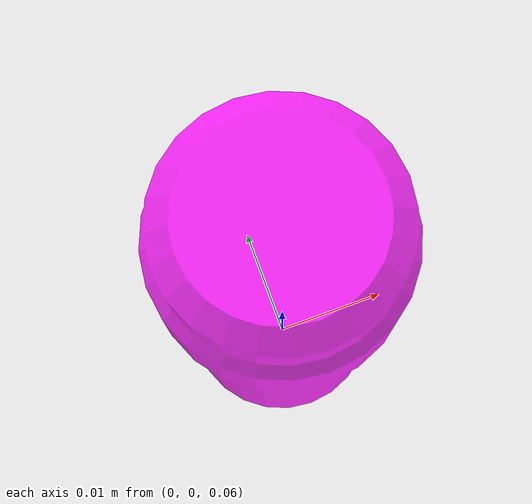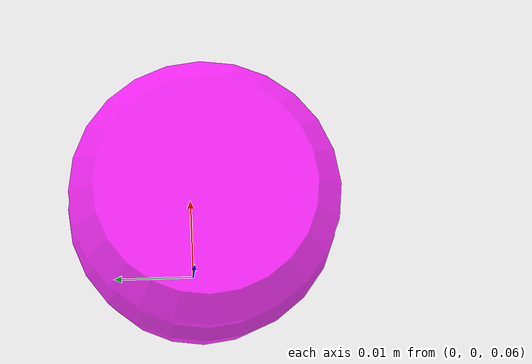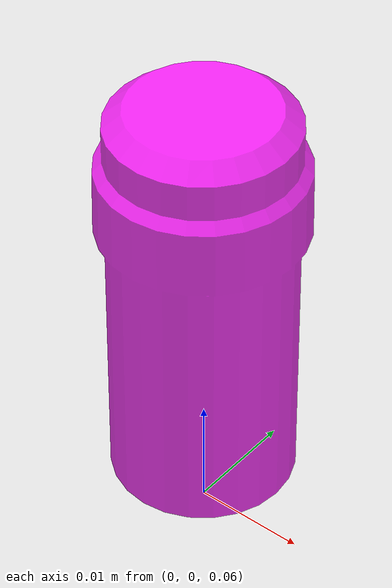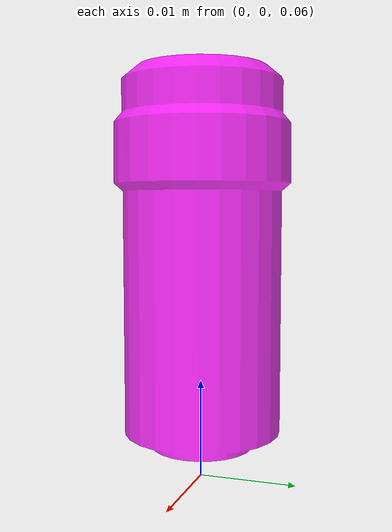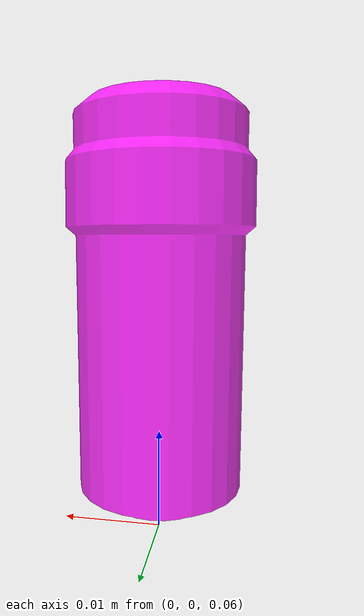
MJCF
<mujoco model="bottom_watertight_tiny">
  <default>
    <default group="2" type="mesh" contype="0" conaffinity="0">
      <geom group="2" type="mesh" contype="0" conaffinity="0"/>
    </default>
    <default group="3" type="mesh">
      <geom group="3" type="mesh"/>
    </default>
  </default>
  <asset>
    <mesh file="bottom_watertight_tiny.obj"/>
    <mesh file="bottom_watertight_tiny_collision_0.obj"/>
    <mesh file="bottom_watertight_tiny_collision_1.obj"/>
    <mesh file="bottom_watertight_tiny_collision_2.obj"/>
    <mesh file="bottom_watertight_tiny_collision_3.obj"/>
    <mesh file="bottom_watertight_tiny_collision_4.obj"/>
    <mesh file="bottom_watertight_tiny_collision_5.obj"/>
    <mesh file="bottom_watertight_tiny_collision_6.obj"/>
    <mesh file="bottom_watertight_tiny_collision_7.obj"/>
    <mesh file="bottom_watertight_tiny_collision_8.obj"/>
    <mesh file="bottom_watertight_tiny_collision_9.obj"/>
    <mesh file="bottom_watertight_tiny_collision_10.obj"/>
    <mesh file="bottom_watertight_tiny_collision_11.obj"/>
    <mesh file="bottom_watertight_tiny_collision_12.obj"/>
    <mesh file="bottom_watertight_tiny_collision_13.obj"/>
    <mesh file="bottom_watertight_tiny_collision_14.obj"/>
    <mesh file="bottom_watertight_tiny_collision_15.obj"/>
    <mesh file="bottom_watertight_tiny_collision_16.obj"/>
    <mesh file="bottom_watertight_tiny_collision_17.obj"/>
    <mesh file="bottom_watertight_tiny_collision_18.obj"/>
    <mesh file="bottom_watertight_tiny_collision_19.obj"/>
    <mesh file="bottom_watertight_tiny_collision_20.obj"/>
    <mesh file="bottom_watertight_tiny_collision_21.obj"/>
    <mesh file="bottom_watertight_tiny_collision_22.obj"/>
    <mesh file="bottom_watertight_tiny_collision_23.obj"/>
    <mesh file="bottom_watertight_tiny_collision_24.obj"/>
    <mesh file="bottom_watertight_tiny_collision_25.obj"/>
    <mesh file="bottom_watertight_tiny_collision_26.obj"/>
    <mesh file="bottom_watertight_tiny_collision_27.obj"/>
    <mesh file="bottom_watertight_tiny_collision_28.obj"/>
    <mesh file="bottom_watertight_tiny_collision_29.obj"/>
    <mesh file="bottom_watertight_tiny_collision_30.obj"/>
    <mesh file="bottom_watertight_tiny_collision_31.obj"/>
    <mesh file="bottom_watertight_tiny_collision_32.obj"/>
    <mesh file="bottom_watertight_tiny_collision_33.obj"/>
    <mesh file="bottom_watertight_tiny_collision_34.obj"/>
    <mesh file="bottom_watertight_tiny_collision_35.obj"/>
    <mesh file="bottom_watertight_tiny_collision_36.obj"/>
    <mesh file="bottom_watertight_tiny_collision_37.obj"/>
    <mesh file="bottom_watertight_tiny_collision_38.obj"/>
    <mesh file="bottom_watertight_tiny_collision_39.obj"/>
    <mesh file="bottom_watertight_tiny_collision_40.obj"/>
    <mesh file="bottom_watertight_tiny_collision_41.obj"/>
    <mesh file="bottom_watertight_tiny_collision_42.obj"/>
    <mesh file="bottom_watertight_tiny_collision_43.obj"/>
    <mesh file="bottom_watertight_tiny_collision_44.obj"/>
    <mesh file="bottom_watertight_tiny_collision_45.obj"/>
    <mesh file="bottom_watertight_tiny_collision_46.obj"/>
    <mesh file="bottom_watertight_tiny_collision_47.obj"/>
    <mesh file="bottom_watertight_tiny_collision_48.obj"/>
    <mesh file="bottom_watertight_tiny_collision_49.obj"/>
    <mesh file="bottom_watertight_tiny_collision_50.obj"/>
    <mesh file="bottom_watertight_tiny_collision_51.obj"/>
    <mesh file="bottom_watertight_tiny_collision_52.obj"/>
    <mesh file="bottom_watertight_tiny_collision_53.obj"/>
    <mesh file="bottom_watertight_tiny_collision_54.obj"/>
    <mesh file="bottom_watertight_tiny_collision_55.obj"/>
    <mesh file="bottom_watertight_tiny_collision_56.obj"/>
    <mesh file="bottom_watertight_tiny_collision_57.obj"/>
    <mesh file="bottom_watertight_tiny_collision_58.obj"/>
    <mesh file="bottom_watertight_tiny_collision_59.obj"/>
    <mesh file="bottom_watertight_tiny_collision_60.obj"/>
    <mesh file="bottom_watertight_tiny_collision_61.obj"/>
    <mesh file="bottom_watertight_tiny_collision_62.obj"/>
    <mesh file="bottom_watertight_tiny_collision_63.obj"/>
    <mesh file="bottom_watertight_tiny_collision_64.obj"/>
    <mesh file="bottom_watertight_tiny_collision_65.obj"/>
    <mesh file="bottom_watertight_tiny_collision_66.obj"/>
    <mesh file="bottom_watertight_tiny_collision_67.obj"/>
    <mesh file="bottom_watertight_tiny_collision_68.obj"/>
    <mesh file="bottom_watertight_tiny_collision_69.obj"/>
    <mesh file="bottom_watertight_tiny_collision_70.obj"/>
    <mesh file="bottom_watertight_tiny_collision_71.obj"/>
    <mesh file="bottom_watertight_tiny_collision_72.obj"/>
    <mesh file="bottom_watertight_tiny_collision_73.obj"/>
    <mesh file="bottom_watertight_tiny_collision_74.obj"/>
    <mesh file="bottom_watertight_tiny_collision_75.obj"/>
    <mesh file="bottom_watertight_tiny_collision_76.obj"/>
    <mesh file="bottom_watertight_tiny_collision_77.obj"/>
    <mesh file="bottom_watertight_tiny_collision_78.obj"/>
    <mesh file="bottom_watertight_tiny_collision_79.obj"/>
    <mesh file="bottom_watertight_tiny_collision_80.obj"/>
    <mesh file="bottom_watertight_tiny_collision_81.obj"/>
    <mesh file="bottom_watertight_tiny_collision_82.obj"/>
    <mesh file="bottom_watertight_tiny_collision_83.obj"/>
    <mesh file="bottom_watertight_tiny_collision_84.obj"/>
    <mesh file="bottom_watertight_tiny_collision_85.obj"/>
    <mesh file="bottom_watertight_tiny_collision_86.obj"/>
    <mesh file="bottom_watertight_tiny_collision_87.obj"/>
    <mesh file="bottom_watertight_tiny_collision_88.obj"/>
    <mesh file="bottom_watertight_tiny_collision_89.obj"/>
    <mesh file="bottom_watertight_tiny_collision_90.obj"/>
    <mesh file="bottom_watertight_tiny_collision_91.obj"/>
    <mesh file="bottom_watertight_tiny_collision_92.obj"/>
    <mesh file="bottom_watertight_tiny_collision_93.obj"/>
  </asset>
  <worldbody>
    <body name="bottom_watertight_tiny">
      <freejoint/>
      <geom mesh="bottom_watertight_tiny" group="2" type="mesh" rgba="1 0 1 0.8" contype="0" conaffinity="0"/>
      <geom mesh="bottom_watertight_tiny_collision_0" rgba="0.9853082144443334 0.38233365690192034 0.24698996170023246 1" group="3" type="mesh"/>
      <geom mesh="bottom_watertight_tiny_collision_1" rgba="0.3083875910203884 0.9671429320074734 0.9790526799747874 1" group="3" type="mesh"/>
      <geom mesh="bottom_watertight_tiny_collision_2" rgba="0.8781446943270005 0.2192290588660426 0.44300979918887706 1" group="3" type="mesh"/>
      <geom mesh="bottom_watertight_tiny_collision_3" rgba="0.1741220077358372 0.3251538654090539 0.7429052278362229 1" group="3" type="mesh"/>
      <geom mesh="bottom_watertight_tiny_collision_4" rgba="0.10915865590272145 0.3343855142909302 0.9866967469484065 1" group="3" type="mesh"/>
      <geom mesh="bottom_watertight_tiny_collision_5" rgba="0.25947673515271186 0.7384080607275862 0.45977848998197046 1" group="3" type="mesh"/>
      <geom mesh="bottom_watertight_tiny_collision_6" rgba="0.0415232114101286 0.8959007229286848 0.36003999852527024 1" group="3" type="mesh"/>
      <geom mesh="bottom_watertight_tiny_collision_7" rgba="0.7683340571687312 0.5480132849196077 0.7930444177387387 1" group="3" type="mesh"/>
      <geom mesh="bottom_watertight_tiny_collision_8" rgba="0.44368754701543833 0.2095262419619346 0.788988744952007 1" group="3" type="mesh"/>
      <geom mesh="bottom_watertight_tiny_collision_9" rgba="0.07330606377444193 0.8267267944720152 0.45513073168566 1" group="3" type="mesh"/>
      <geom mesh="bottom_watertight_tiny_collision_10" rgba="0.12781158498267775 0.08745929155287924 0.2599902867010725 1" group="3" type="mesh"/>
      <geom mesh="bottom_watertight_tiny_collision_11" rgba="0.5844625476926059 0.15946536351993246 0.9864688454268145 1" group="3" type="mesh"/>
      <geom mesh="bottom_watertight_tiny_collision_12" rgba="0.8380231988702354 0.15070037666813585 0.23065274579927975 1" group="3" type="mesh"/>
      <geom mesh="bottom_watertight_tiny_collision_13" rgba="0.19112567865055108 0.03940339015411143 0.4342191441709634 1" group="3" type="mesh"/>
      <geom mesh="bottom_watertight_tiny_collision_14" rgba="0.400991622546508 0.9571608466614671 0.1843398681592192 1" group="3" type="mesh"/>
      <geom mesh="bottom_watertight_tiny_collision_15" rgba="0.36100474661372306 0.9957896371533742 0.8383253591757491 1" group="3" type="mesh"/>
      <geom mesh="bottom_watertight_tiny_collision_16" rgba="0.3213961268705443 0.6459938416941668 0.8781538437242606 1" group="3" type="mesh"/>
      <geom mesh="bottom_watertight_tiny_collision_17" rgba="0.04612167889660179 0.4550652019429594 0.24860608806497086 1" group="3" type="mesh"/>
      <geom mesh="bottom_watertight_tiny_collision_18" rgba="0.39619000912190694 0.26016128885640843 0.03906589184522402 1" group="3" type="mesh"/>
      <geom mesh="bottom_watertight_tiny_collision_19" rgba="0.8422748012211095 0.302433812277898 0.20294926589119022 1" group="3" type="mesh"/>
      <geom mesh="bottom_watertight_tiny_collision_20" rgba="0.21148729104562836 0.46043218513833173 0.7638151421762904 1" group="3" type="mesh"/>
      <geom mesh="bottom_watertight_tiny_collision_21" rgba="0.7352828485668915 0.6826113084061032 0.27270586913856387 1" group="3" type="mesh"/>
      <geom mesh="bottom_watertight_tiny_collision_22" rgba="0.8655683915175284 0.714536327771994 0.9972263611422214 1" group="3" type="mesh"/>
      <geom mesh="bottom_watertight_tiny_collision_23" rgba="0.5149983102271192 0.06343067744052844 0.8017542759915478 1" group="3" type="mesh"/>
      <geom mesh="bottom_watertight_tiny_collision_24" rgba="0.4934365017366993 0.9063691765150296 0.5261688495228233 1" group="3" type="mesh"/>
      <geom mesh="bottom_watertight_tiny_collision_25" rgba="0.18213576718722901 0.9021919159410994 0.8839478075589322 1" group="3" type="mesh"/>
      <geom mesh="bottom_watertight_tiny_collision_26" rgba="0.9710993297200944 0.45615680921021806 0.24048894730896675 1" group="3" type="mesh"/>
      <geom mesh="bottom_watertight_tiny_collision_27" rgba="0.028309443905967346 0.8737187667212292 0.20977256261819544 1" group="3" type="mesh"/>
      <geom mesh="bottom_watertight_tiny_collision_28" rgba="0.5366351598043515 0.6880966024514533 0.6834351566444892 1" group="3" type="mesh"/>
      <geom mesh="bottom_watertight_tiny_collision_29" rgba="0.4325810192211925 0.48035184718223967 0.29210589692593114 1" group="3" type="mesh"/>
      <geom mesh="bottom_watertight_tiny_collision_30" rgba="0.9308380846414873 0.6758057601912336 0.3453138511078192 1" group="3" type="mesh"/>
      <geom mesh="bottom_watertight_tiny_collision_31" rgba="0.2725359243000839 0.7325519704752896 0.74555361502356 1" group="3" type="mesh"/>
      <geom mesh="bottom_watertight_tiny_collision_32" rgba="0.9812433260081983 0.3948468706199255 0.9945554765429027 1" group="3" type="mesh"/>
      <geom mesh="bottom_watertight_tiny_collision_33" rgba="0.56378504030355 0.8550292109904425 0.22745660741129792 1" group="3" type="mesh"/>
      <geom mesh="bottom_watertight_tiny_collision_34" rgba="0.7988481763610453 0.010090313214458413 0.29927056086393444 1" group="3" type="mesh"/>
      <geom mesh="bottom_watertight_tiny_collision_35" rgba="0.6928191324769346 0.08088564915998198 0.677058555884116 1" group="3" type="mesh"/>
      <geom mesh="bottom_watertight_tiny_collision_36" rgba="0.5305010231202294 0.27129620233698926 0.25282251586247817 1" group="3" type="mesh"/>
      <geom mesh="bottom_watertight_tiny_collision_37" rgba="0.9458976701989638 0.4643456579716624 0.3061313921007597 1" group="3" type="mesh"/>
      <geom mesh="bottom_watertight_tiny_collision_38" rgba="0.9504948309251797 0.9235807865628124 0.34314284326978617 1" group="3" type="mesh"/>
      <geom mesh="bottom_watertight_tiny_collision_39" rgba="0.8243449539948448 0.4124947182950083 0.194084454223862 1" group="3" type="mesh"/>
      <geom mesh="bottom_watertight_tiny_collision_40" rgba="0.6082949591387199 0.12186369637297756 0.969075572499188 1" group="3" type="mesh"/>
      <geom mesh="bottom_watertight_tiny_collision_41" rgba="0.012336216180586668 0.8436226050478052 0.6270431593922082 1" group="3" type="mesh"/>
      <geom mesh="bottom_watertight_tiny_collision_42" rgba="0.2959522768954572 0.7908787766917386 0.030525456010583762 1" group="3" type="mesh"/>
      <geom mesh="bottom_watertight_tiny_collision_43" rgba="0.4495084522831816 0.6306435230530456 0.23493339634158195 1" group="3" type="mesh"/>
      <geom mesh="bottom_watertight_tiny_collision_44" rgba="0.30414620463523356 0.7535226447160621 0.7463606267646422 1" group="3" type="mesh"/>
      <geom mesh="bottom_watertight_tiny_collision_45" rgba="0.16618393365986228 0.869951865731177 0.16442043404854478 1" group="3" type="mesh"/>
      <geom mesh="bottom_watertight_tiny_collision_46" rgba="0.332395047155295 0.8805374601490471 0.9494312748667132 1" group="3" type="mesh"/>
      <geom mesh="bottom_watertight_tiny_collision_47" rgba="0.5465902352265762 0.4300276729300828 0.7550727307116121 1" group="3" type="mesh"/>
      <geom mesh="bottom_watertight_tiny_collision_48" rgba="0.1478303243165715 0.409423492505542 0.7840353427362277 1" group="3" type="mesh"/>
      <geom mesh="bottom_watertight_tiny_collision_49" rgba="0.2295937668223993 0.3147610356467221 0.7007118153231437 1" group="3" type="mesh"/>
      <geom mesh="bottom_watertight_tiny_collision_50" rgba="0.0701301044184961 0.6136235431664804 0.5587415352322964 1" group="3" type="mesh"/>
      <geom mesh="bottom_watertight_tiny_collision_51" rgba="0.8345001953782328 0.2644629063162245 0.6542176999705543 1" group="3" type="mesh"/>
      <geom mesh="bottom_watertight_tiny_collision_52" rgba="0.9555182830062307 0.011696812506355903 0.46539141546305174 1" group="3" type="mesh"/>
      <geom mesh="bottom_watertight_tiny_collision_53" rgba="0.1633907221582337 0.5669722078729358 0.19790883431446704 1" group="3" type="mesh"/>
      <geom mesh="bottom_watertight_tiny_collision_54" rgba="0.1565437014834189 0.5967917389092007 0.4141050394992819 1" group="3" type="mesh"/>
      <geom mesh="bottom_watertight_tiny_collision_55" rgba="0.9489612439999132 0.5437246268335816 0.055133379912767455 1" group="3" type="mesh"/>
      <geom mesh="bottom_watertight_tiny_collision_56" rgba="0.5277600421327896 0.980369918962574 0.8113968829192205 1" group="3" type="mesh"/>
      <geom mesh="bottom_watertight_tiny_collision_57" rgba="0.5480499944641636 0.6001248403511525 0.7361044270068366 1" group="3" type="mesh"/>
      <geom mesh="bottom_watertight_tiny_collision_58" rgba="0.3187047278618407 0.6128659610409645 0.5058840612239923 1" group="3" type="mesh"/>
      <geom mesh="bottom_watertight_tiny_collision_59" rgba="0.2655190945411976 0.9181319278531941 0.0007245887308305887 1" group="3" type="mesh"/>
      <geom mesh="bottom_watertight_tiny_collision_60" rgba="0.7967520426635888 0.8174149438879775 0.7300202086394246 1" group="3" type="mesh"/>
      <geom mesh="bottom_watertight_tiny_collision_61" rgba="0.138554531427025 0.44074774451541976 0.09164090078699016 1" group="3" type="mesh"/>
      <geom mesh="bottom_watertight_tiny_collision_62" rgba="0.286131999087723 0.39079140805963253 0.66640603783387 1" group="3" type="mesh"/>
      <geom mesh="bottom_watertight_tiny_collision_63" rgba="0.4728339689159258 0.7186754108068477 0.8110854061774684 1" group="3" type="mesh"/>
      <geom mesh="bottom_watertight_tiny_collision_64" rgba="0.006727074653858023 0.7051793155062286 0.46792077435282764 1" group="3" type="mesh"/>
      <geom mesh="bottom_watertight_tiny_collision_65" rgba="0.3231284955675271 0.0629518755317593 0.04526095716446399 1" group="3" type="mesh"/>
      <geom mesh="bottom_watertight_tiny_collision_66" rgba="0.8629484074088363 0.1808761040355027 0.8975354264773606 1" group="3" type="mesh"/>
      <geom mesh="bottom_watertight_tiny_collision_67" rgba="0.08141772633756061 0.8876874958198507 0.8625876548783413 1" group="3" type="mesh"/>
      <geom mesh="bottom_watertight_tiny_collision_68" rgba="0.5503398206622848 0.04238769705145207 0.3070784367200844 1" group="3" type="mesh"/>
      <geom mesh="bottom_watertight_tiny_collision_69" rgba="0.6097209364272493 0.07994578168386457 0.9360971187712481 1" group="3" type="mesh"/>
      <geom mesh="bottom_watertight_tiny_collision_70" rgba="0.34913719971498636 0.5516683128177398 0.846625747573743 1" group="3" type="mesh"/>
      <geom mesh="bottom_watertight_tiny_collision_71" rgba="0.3689237148559167 0.7365458527568616 0.03618110924825424 1" group="3" type="mesh"/>
      <geom mesh="bottom_watertight_tiny_collision_72" rgba="0.842718925431065 0.8327190411830803 0.9710501273550476 1" group="3" type="mesh"/>
      <geom mesh="bottom_watertight_tiny_collision_73" rgba="0.21174362014919557 0.05413015368162477 0.45625409005146345 1" group="3" type="mesh"/>
      <geom mesh="bottom_watertight_tiny_collision_74" rgba="0.40655233395928214 0.2427301908196281 0.11632513976488579 1" group="3" type="mesh"/>
      <geom mesh="bottom_watertight_tiny_collision_75" rgba="0.8414635428315428 0.45723826008103585 0.5411742597285272 1" group="3" type="mesh"/>
      <geom mesh="bottom_watertight_tiny_collision_76" rgba="0.7138745480457364 0.6581457710550922 0.980280557626085 1" group="3" type="mesh"/>
      <geom mesh="bottom_watertight_tiny_collision_77" rgba="0.6598514073528563 0.23371082674635968 0.8687113879688323 1" group="3" type="mesh"/>
      <geom mesh="bottom_watertight_tiny_collision_78" rgba="0.8438562743584015 0.11408082351534576 0.9325424166008629 1" group="3" type="mesh"/>
      <geom mesh="bottom_watertight_tiny_collision_79" rgba="0.38160415319702234 0.21918173331664903 0.6921547085151435 1" group="3" type="mesh"/>
      <geom mesh="bottom_watertight_tiny_collision_80" rgba="0.8900085505573566 0.7686547171098522 0.5488323154281473 1" group="3" type="mesh"/>
      <geom mesh="bottom_watertight_tiny_collision_81" rgba="0.8268502018753322 0.8925597159749284 0.5454552516829874 1" group="3" type="mesh"/>
      <geom mesh="bottom_watertight_tiny_collision_82" rgba="0.7305219583006102 0.39399147317829486 0.5888074701035418 1" group="3" type="mesh"/>
      <geom mesh="bottom_watertight_tiny_collision_83" rgba="0.1408753944046004 0.39058289573217553 0.2350746228723416 1" group="3" type="mesh"/>
      <geom mesh="bottom_watertight_tiny_collision_84" rgba="0.40055192750030977 0.01181844723848502 0.10621644246159356 1" group="3" type="mesh"/>
      <geom mesh="bottom_watertight_tiny_collision_85" rgba="0.5108502913219378 0.15751021343747806 0.7596518410568632 1" group="3" type="mesh"/>
      <geom mesh="bottom_watertight_tiny_collision_86" rgba="0.5981534084414518 0.7623849123857411 0.3251920435727965 1" group="3" type="mesh"/>
      <geom mesh="bottom_watertight_tiny_collision_87" rgba="0.14092711290345916 0.46190200249300406 0.06301221254519596 1" group="3" type="mesh"/>
      <geom mesh="bottom_watertight_tiny_collision_88" rgba="0.7430503204296899 0.8094962560927474 0.972588031288237 1" group="3" type="mesh"/>
      <geom mesh="bottom_watertight_tiny_collision_89" rgba="0.6637319136597554 0.5578340963566364 0.1875552969532921 1" group="3" type="mesh"/>
      <geom mesh="bottom_watertight_tiny_collision_90" rgba="0.8312750560733315 0.2956071922509921 0.6423148493459191 1" group="3" type="mesh"/>
      <geom mesh="bottom_watertight_tiny_collision_91" rgba="0.4569515846781863 0.863204309096908 0.8088231316694962 1" group="3" type="mesh"/>
      <geom mesh="bottom_watertight_tiny_collision_92" rgba="0.591166015846533 0.5411155934329839 0.22182967141375254 1" group="3" type="mesh"/>
      <geom mesh="bottom_watertight_tiny_collision_93" rgba="0.17773909989720837 0.6837175418006989 0.7073377530939351 1" group="3" type="mesh"/>
    </body>
  </worldbody>
</mujoco>
